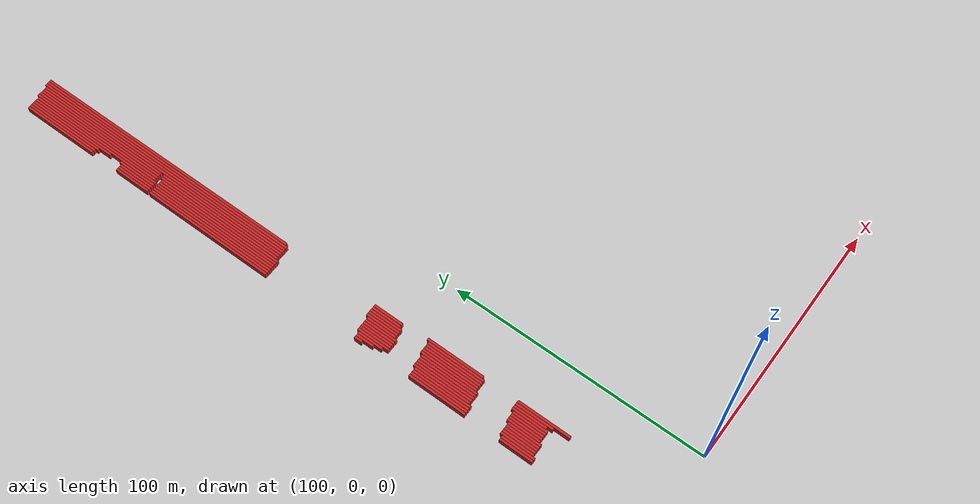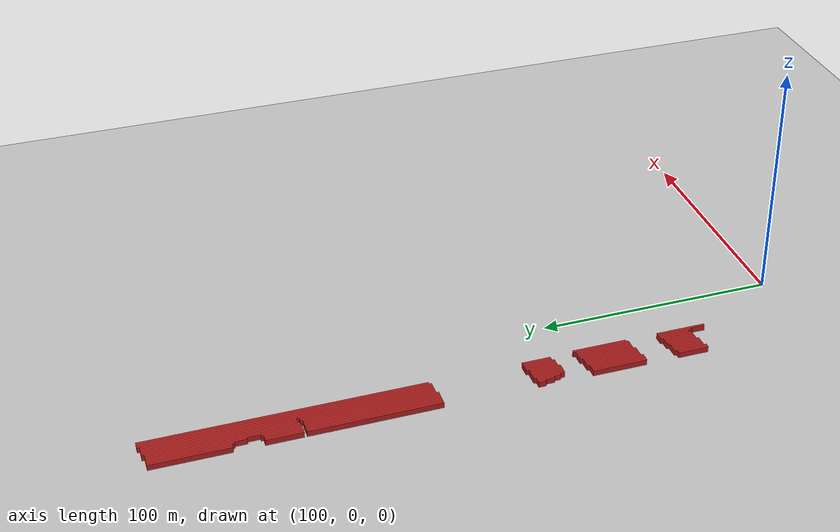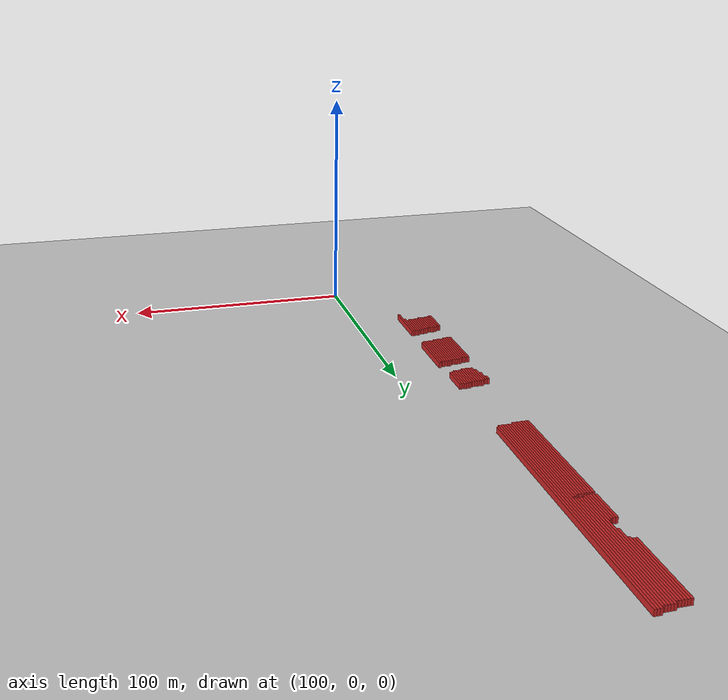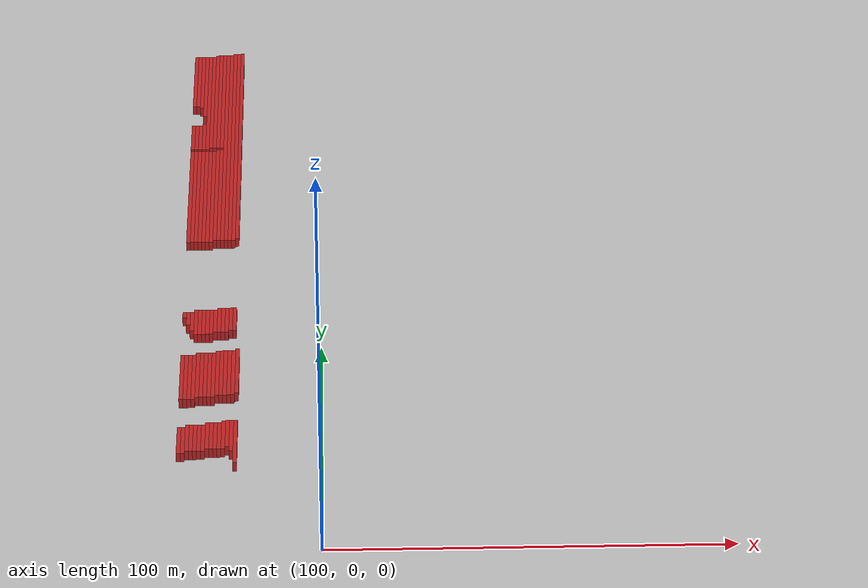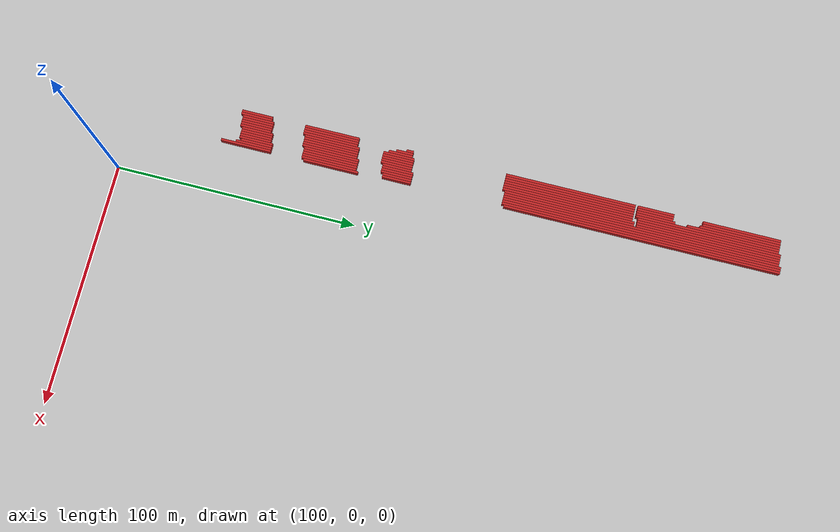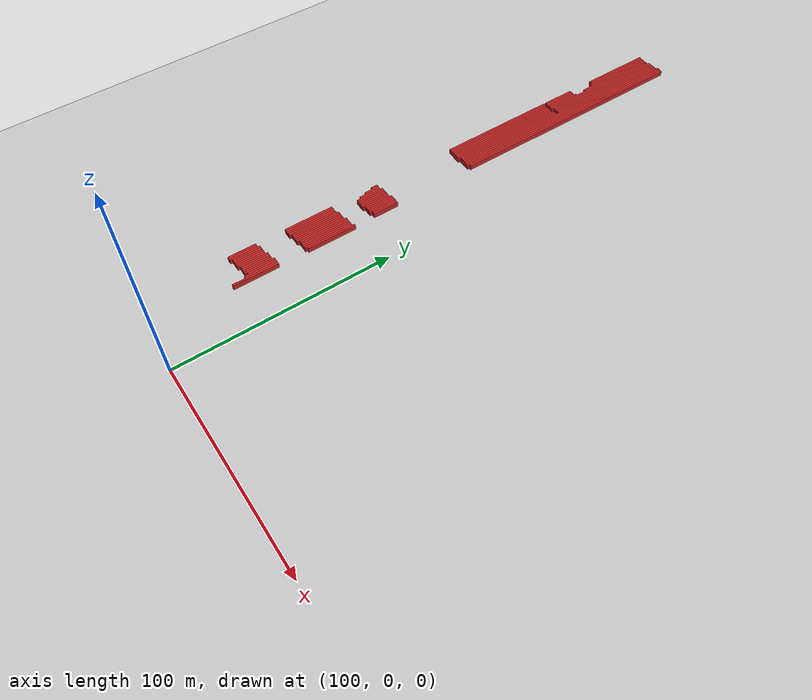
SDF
<sdf version="1.4">
 <world name="1_wall">
  <model name="ground_plane">
   <static>1</static>
   <link name="link">
    <collision name="collision">
     <geometry><plane><normal>0 0 1</normal><size>1000 1000</size></plane></geometry>
     <surface><friction><ode><mu>100</mu><mu2>50</mu2></ode></friction></surface>
    </collision>
    <visual name="visual">
     <cast_shadows>0</cast_shadows>
     <geometry><plane><normal>0 0 1</normal><size>10000 10000</size></plane></geometry>
     <material>
      <script><uri>file://media/materials/scripts/gazebo.material</uri><name>Gazebo/Grey</name></script>
     </material>
    </visual>
    <velocity_decay><linear>0</linear><angular>0</angular></velocity_decay>
   </link>
  </model>
  <model name="Wall_143">
   <static>1</static>
   <link name="Wall_143">
    <collision name="Wall_Collision_143">
     <geometry><box><size>13.0 1.0 2.5</size></box></geometry>
     <pose>0 0 1.25 0 -0 0</pose>
    </collision>
    <visual name="Wall_Visual_143">
     <pose>0 0 1.25 0 -0 0</pose>
     <geometry><box><size>13.0 1.0 2.5</size></box></geometry>
     <material>
      <script><uri>file://media/materials/scripts/gazebo.material</uri><name>Gazebo/Red</name></script>
     </material>
    </visual>
    <velocity_decay><linear>0</linear><angular>0</angular></velocity_decay>
    <pose>64.5 49.5 0 0 0 1.5707963267948966</pose>
   </link>
  </model>
  <model name="Wall_144">
   <static>1</static>
   <link name="Wall_144">
    <collision name="Wall_Collision_144">
     <geometry><box><size>23.0 1.0 2.5</size></box></geometry>
     <pose>0 0 1.25 0 -0 0</pose>
    </collision>
    <visual name="Wall_Visual_144">
     <pose>0 0 1.25 0 -0 0</pose>
     <geometry><box><size>23.0 1.0 2.5</size></box></geometry>
     <material>
      <script><uri>file://media/materials/scripts/gazebo.material</uri><name>Gazebo/Red</name></script>
     </material>
    </visual>
    <velocity_decay><linear>0</linear><angular>0</angular></velocity_decay>
    <pose>64.5 81.5 0 0 0 1.5707963267948966</pose>
   </link>
  </model>
  <model name="Wall_145">
   <static>1</static>
   <link name="Wall_145">
    <collision name="Wall_Collision_145">
     <geometry><box><size>3.0 1.0 2.5</size></box></geometry>
     <pose>0 0 1.25 0 -0 0</pose>
    </collision>
    <visual name="Wall_Visual_145">
     <pose>0 0 1.25 0 -0 0</pose>
     <geometry><box><size>3.0 1.0 2.5</size></box></geometry>
     <material>
      <script><uri>file://media/materials/scripts/gazebo.material</uri><name>Gazebo/Red</name></script>
     </material>
    </visual>
    <velocity_decay><linear>0</linear><angular>0</angular></velocity_decay>
    <pose>64.5 114.5 0 0 0 1.5707963267948966</pose>
   </link>
  </model>
  <model name="Wall_146">
   <static>1</static>
   <link name="Wall_146">
    <collision name="Wall_Collision_146">
     <geometry><box><size>54.0 1.0 2.5</size></box></geometry>
     <pose>0 0 1.25 0 -0 0</pose>
    </collision>
    <visual name="Wall_Visual_146">
     <pose>0 0 1.25 0 -0 0</pose>
     <geometry><box><size>54.0 1.0 2.5</size></box></geometry>
     <material>
      <script><uri>file://media/materials/scripts/gazebo.material</uri><name>Gazebo/Red</name></script>
     </material>
    </visual>
    <velocity_decay><linear>0</linear><angular>0</angular></velocity_decay>
    <pose>64.5 182.0 0 0 0 1.5707963267948966</pose>
   </link>
  </model>
  <model name="Wall_147">
   <static>1</static>
   <link name="Wall_147">
    <collision name="Wall_Collision_147">
     <geometry><box><size>15.0 1.0 2.5</size></box></geometry>
     <pose>0 0 1.25 0 -0 0</pose>
    </collision>
    <visual name="Wall_Visual_147">
     <pose>0 0 1.25 0 -0 0</pose>
     <geometry><box><size>15.0 1.0 2.5</size></box></geometry>
     <material>
      <script><uri>file://media/materials/scripts/gazebo.material</uri><name>Gazebo/Red</name></script>
     </material>
    </visual>
    <velocity_decay><linear>0</linear><angular>0</angular></velocity_decay>
    <pose>64.5 217.5 0 0 0 1.5707963267948966</pose>
   </link>
  </model>
  <model name="Wall_148">
   <static>1</static>
   <link name="Wall_148">
    <collision name="Wall_Collision_148">
     <geometry><box><size>32.0 1.0 2.5</size></box></geometry>
     <pose>0 0 1.25 0 -0 0</pose>
    </collision>
    <visual name="Wall_Visual_148">
     <pose>0 0 1.25 0 -0 0</pose>
     <geometry><box><size>32.0 1.0 2.5</size></box></geometry>
     <material>
      <script><uri>file://media/materials/scripts/gazebo.material</uri><name>Gazebo/Red</name></script>
     </material>
    </visual>
    <velocity_decay><linear>0</linear><angular>0</angular></velocity_decay>
    <pose>64.5 253.0 0 0 0 1.5707963267948966</pose>
   </link>
  </model>
  <model name="Wall_149">
   <static>1</static>
   <link name="Wall_149">
    <collision name="Wall_Collision_149">
     <geometry><box><size>13.0 1.0 2.5</size></box></geometry>
     <pose>0 0 1.25 0 -0 0</pose>
    </collision>
    <visual name="Wall_Visual_149">
     <pose>0 0 1.25 0 -0 0</pose>
     <geometry><box><size>13.0 1.0 2.5</size></box></geometry>
     <material>
      <script><uri>file://media/materials/scripts/gazebo.material</uri><name>Gazebo/Red</name></script>
     </material>
    </visual>
    <velocity_decay><linear>0</linear><angular>0</angular></velocity_decay>
    <pose>65.5 49.5 0 0 0 1.5707963267948966</pose>
   </link>
  </model>
  <model name="Wall_150">
   <static>1</static>
   <link name="Wall_150">
    <collision name="Wall_Collision_150">
     <geometry><box><size>23.0 1.0 2.5</size></box></geometry>
     <pose>0 0 1.25 0 -0 0</pose>
    </collision>
    <visual name="Wall_Visual_150">
     <pose>0 0 1.25 0 -0 0</pose>
     <geometry><box><size>23.0 1.0 2.5</size></box></geometry>
     <material>
      <script><uri>file://media/materials/scripts/gazebo.material</uri><name>Gazebo/Red</name></script>
     </material>
    </visual>
    <velocity_decay><linear>0</linear><angular>0</angular></velocity_decay>
    <pose>65.5 81.5 0 0 0 1.5707963267948966</pose>
   </link>
  </model>
  <model name="Wall_151">
   <static>1</static>
   <link name="Wall_151">
    <collision name="Wall_Collision_151">
     <geometry><box><size>7.0 1.0 2.5</size></box></geometry>
     <pose>0 0 1.25 0 -0 0</pose>
    </collision>
    <visual name="Wall_Visual_151">
     <pose>0 0 1.25 0 -0 0</pose>
     <geometry><box><size>7.0 1.0 2.5</size></box></geometry>
     <material>
      <script><uri>file://media/materials/scripts/gazebo.material</uri><name>Gazebo/Red</name></script>
     </material>
    </visual>
    <velocity_decay><linear>0</linear><angular>0</angular></velocity_decay>
    <pose>65.5 112.5 0 0 0 1.5707963267948966</pose>
   </link>
  </model>
  <model name="Wall_152">
   <static>1</static>
   <link name="Wall_152">
    <collision name="Wall_Collision_152">
     <geometry><box><size>54.0 1.0 2.5</size></box></geometry>
     <pose>0 0 1.25 0 -0 0</pose>
    </collision>
    <visual name="Wall_Visual_152">
     <pose>0 0 1.25 0 -0 0</pose>
     <geometry><box><size>54.0 1.0 2.5</size></box></geometry>
     <material>
      <script><uri>file://media/materials/scripts/gazebo.material</uri><name>Gazebo/Red</name></script>
     </material>
    </visual>
    <velocity_decay><linear>0</linear><angular>0</angular></velocity_decay>
    <pose>65.5 182.0 0 0 0 1.5707963267948966</pose>
   </link>
  </model>
  <model name="Wall_153">
   <static>1</static>
   <link name="Wall_153">
    <collision name="Wall_Collision_153">
     <geometry><box><size>15.0 1.0 2.5</size></box></geometry>
     <pose>0 0 1.25 0 -0 0</pose>
    </collision>
    <visual name="Wall_Visual_153">
     <pose>0 0 1.25 0 -0 0</pose>
     <geometry><box><size>15.0 1.0 2.5</size></box></geometry>
     <material>
      <script><uri>file://media/materials/scripts/gazebo.material</uri><name>Gazebo/Red</name></script>
     </material>
    </visual>
    <velocity_decay><linear>0</linear><angular>0</angular></velocity_decay>
    <pose>65.5 217.5 0 0 0 1.5707963267948966</pose>
   </link>
  </model>
  <model name="Wall_154">
   <static>1</static>
   <link name="Wall_154">
    <collision name="Wall_Collision_154">
     <geometry><box><size>32.0 1.0 2.5</size></box></geometry>
     <pose>0 0 1.25 0 -0 0</pose>
    </collision>
    <visual name="Wall_Visual_154">
     <pose>0 0 1.25 0 -0 0</pose>
     <geometry><box><size>32.0 1.0 2.5</size></box></geometry>
     <material>
      <script><uri>file://media/materials/scripts/gazebo.material</uri><name>Gazebo/Red</name></script>
     </material>
    </visual>
    <velocity_decay><linear>0</linear><angular>0</angular></velocity_decay>
    <pose>65.5 253.0 0 0 0 1.5707963267948966</pose>
   </link>
  </model>
  <model name="Wall_155">
   <static>1</static>
   <link name="Wall_155">
    <collision name="Wall_Collision_155">
     <geometry><box><size>13.0 1.0 2.5</size></box></geometry>
     <pose>0 0 1.25 0 -0 0</pose>
    </collision>
    <visual name="Wall_Visual_155">
     <pose>0 0 1.25 0 -0 0</pose>
     <geometry><box><size>13.0 1.0 2.5</size></box></geometry>
     <material>
      <script><uri>file://media/materials/scripts/gazebo.material</uri><name>Gazebo/Red</name></script>
     </material>
    </visual>
    <velocity_decay><linear>0</linear><angular>0</angular></velocity_decay>
    <pose>66.5 50.5 0 0 0 1.5707963267948966</pose>
   </link>
  </model>
  <model name="Wall_156">
   <static>1</static>
   <link name="Wall_156">
    <collision name="Wall_Collision_156">
     <geometry><box><size>23.0 1.0 2.5</size></box></geometry>
     <pose>0 0 1.25 0 -0 0</pose>
    </collision>
    <visual name="Wall_Visual_156">
     <pose>0 0 1.25 0 -0 0</pose>
     <geometry><box><size>23.0 1.0 2.5</size></box></geometry>
     <material>
      <script><uri>file://media/materials/scripts/gazebo.material</uri><name>Gazebo/Red</name></script>
     </material>
    </visual>
    <velocity_decay><linear>0</linear><angular>0</angular></velocity_decay>
    <pose>66.5 81.5 0 0 0 1.5707963267948966</pose>
   </link>
  </model>
  <model name="Wall_157">
   <static>1</static>
   <link name="Wall_157">
    <collision name="Wall_Collision_157">
     <geometry><box><size>10.0 1.0 2.5</size></box></geometry>
     <pose>0 0 1.25 0 -0 0</pose>
    </collision>
    <visual name="Wall_Visual_157">
     <pose>0 0 1.25 0 -0 0</pose>
     <geometry><box><size>10.0 1.0 2.5</size></box></geometry>
     <material>
      <script><uri>file://media/materials/scripts/gazebo.material</uri><name>Gazebo/Red</name></script>
     </material>
    </visual>
    <velocity_decay><linear>0</linear><angular>0</angular></velocity_decay>
    <pose>66.5 111.0 0 0 0 1.5707963267948966</pose>
   </link>
  </model>
  <model name="Wall_158">
   <static>1</static>
   <link name="Wall_158">
    <collision name="Wall_Collision_158">
     <geometry><box><size>54.0 1.0 2.5</size></box></geometry>
     <pose>0 0 1.25 0 -0 0</pose>
    </collision>
    <visual name="Wall_Visual_158">
     <pose>0 0 1.25 0 -0 0</pose>
     <geometry><box><size>54.0 1.0 2.5</size></box></geometry>
     <material>
      <script><uri>file://media/materials/scripts/gazebo.material</uri><name>Gazebo/Red</name></script>
     </material>
    </visual>
    <velocity_decay><linear>0</linear><angular>0</angular></velocity_decay>
    <pose>66.5 182.0 0 0 0 1.5707963267948966</pose>
   </link>
  </model>
  <model name="Wall_159">
   <static>1</static>
   <link name="Wall_159">
    <collision name="Wall_Collision_159">
     <geometry><box><size>15.0 1.0 2.5</size></box></geometry>
     <pose>0 0 1.25 0 -0 0</pose>
    </collision>
    <visual name="Wall_Visual_159">
     <pose>0 0 1.25 0 -0 0</pose>
     <geometry><box><size>15.0 1.0 2.5</size></box></geometry>
     <material>
      <script><uri>file://media/materials/scripts/gazebo.material</uri><name>Gazebo/Red</name></script>
     </material>
    </visual>
    <velocity_decay><linear>0</linear><angular>0</angular></velocity_decay>
    <pose>66.5 217.5 0 0 0 1.5707963267948966</pose>
   </link>
  </model>
  <model name="Wall_160">
   <static>1</static>
   <link name="Wall_160">
    <collision name="Wall_Collision_160">
     <geometry><box><size>33.0 1.0 2.5</size></box></geometry>
     <pose>0 0 1.25 0 -0 0</pose>
    </collision>
    <visual name="Wall_Visual_160">
     <pose>0 0 1.25 0 -0 0</pose>
     <geometry><box><size>33.0 1.0 2.5</size></box></geometry>
     <material>
      <script><uri>file://media/materials/scripts/gazebo.material</uri><name>Gazebo/Red</name></script>
     </material>
    </visual>
    <velocity_decay><linear>0</linear><angular>0</angular></velocity_decay>
    <pose>66.5 252.5 0 0 0 1.5707963267948966</pose>
   </link>
  </model>
  <model name="Wall_161">
   <static>1</static>
   <link name="Wall_161">
    <collision name="Wall_Collision_161">
     <geometry><box><size>13.0 1.0 2.5</size></box></geometry>
     <pose>0 0 1.25 0 -0 0</pose>
    </collision>
    <visual name="Wall_Visual_161">
     <pose>0 0 1.25 0 -0 0</pose>
     <geometry><box><size>13.0 1.0 2.5</size></box></geometry>
     <material>
      <script><uri>file://media/materials/scripts/gazebo.material</uri><name>Gazebo/Red</name></script>
     </material>
    </visual>
    <velocity_decay><linear>0</linear><angular>0</angular></velocity_decay>
    <pose>67.5 50.5 0 0 0 1.5707963267948966</pose>
   </link>
  </model>
  <model name="Wall_162">
   <static>1</static>
   <link name="Wall_162">
    <collision name="Wall_Collision_162">
     <geometry><box><size>23.0 1.0 2.5</size></box></geometry>
     <pose>0 0 1.25 0 -0 0</pose>
    </collision>
    <visual name="Wall_Visual_162">
     <pose>0 0 1.25 0 -0 0</pose>
     <geometry><box><size>23.0 1.0 2.5</size></box></geometry>
     <material>
      <script><uri>file://media/materials/scripts/gazebo.material</uri><name>Gazebo/Red</name></script>
     </material>
    </visual>
    <velocity_decay><linear>0</linear><angular>0</angular></velocity_decay>
    <pose>67.5 81.5 0 0 0 1.5707963267948966</pose>
   </link>
  </model>
  <model name="Wall_163">
   <static>1</static>
   <link name="Wall_163">
    <collision name="Wall_Collision_163">
     <geometry><box><size>13.0 1.0 2.5</size></box></geometry>
     <pose>0 0 1.25 0 -0 0</pose>
    </collision>
    <visual name="Wall_Visual_163">
     <pose>0 0 1.25 0 -0 0</pose>
     <geometry><box><size>13.0 1.0 2.5</size></box></geometry>
     <material>
      <script><uri>file://media/materials/scripts/gazebo.material</uri><name>Gazebo/Red</name></script>
     </material>
    </visual>
    <velocity_decay><linear>0</linear><angular>0</angular></velocity_decay>
    <pose>67.5 110.5 0 0 0 1.5707963267948966</pose>
   </link>
  </model>
  <model name="Wall_164">
   <static>1</static>
   <link name="Wall_164">
    <collision name="Wall_Collision_164">
     <geometry><box><size>54.0 1.0 2.5</size></box></geometry>
     <pose>0 0 1.25 0 -0 0</pose>
    </collision>
    <visual name="Wall_Visual_164">
     <pose>0 0 1.25 0 -0 0</pose>
     <geometry><box><size>54.0 1.0 2.5</size></box></geometry>
     <material>
      <script><uri>file://media/materials/scripts/gazebo.material</uri><name>Gazebo/Red</name></script>
     </material>
    </visual>
    <velocity_decay><linear>0</linear><angular>0</angular></velocity_decay>
    <pose>67.5 182.0 0 0 0 1.5707963267948966</pose>
   </link>
  </model>
  <model name="Wall_165">
   <static>1</static>
   <link name="Wall_165">
    <collision name="Wall_Collision_165">
     <geometry><box><size>16.0 1.0 2.5</size></box></geometry>
     <pose>0 0 1.25 0 -0 0</pose>
    </collision>
    <visual name="Wall_Visual_165">
     <pose>0 0 1.25 0 -0 0</pose>
     <geometry><box><size>16.0 1.0 2.5</size></box></geometry>
     <material>
      <script><uri>file://media/materials/scripts/gazebo.material</uri><name>Gazebo/Red</name></script>
     </material>
    </visual>
    <velocity_decay><linear>0</linear><angular>0</angular></velocity_decay>
    <pose>67.5 218.0 0 0 0 1.5707963267948966</pose>
   </link>
  </model>
  <model name="Wall_166">
   <static>1</static>
   <link name="Wall_166">
    <collision name="Wall_Collision_166">
     <geometry><box><size>38.0 1.0 2.5</size></box></geometry>
     <pose>0 0 1.25 0 -0 0</pose>
    </collision>
    <visual name="Wall_Visual_166">
     <pose>0 0 1.25 0 -0 0</pose>
     <geometry><box><size>38.0 1.0 2.5</size></box></geometry>
     <material>
      <script><uri>file://media/materials/scripts/gazebo.material</uri><name>Gazebo/Red</name></script>
     </material>
    </visual>
    <velocity_decay><linear>0</linear><angular>0</angular></velocity_decay>
    <pose>67.5 250.0 0 0 0 1.5707963267948966</pose>
   </link>
  </model>
  <model name="Wall_167">
   <static>1</static>
   <link name="Wall_167">
    <collision name="Wall_Collision_167">
     <geometry><box><size>13.0 1.0 2.5</size></box></geometry>
     <pose>0 0 1.25 0 -0 0</pose>
    </collision>
    <visual name="Wall_Visual_167">
     <pose>0 0 1.25 0 -0 0</pose>
     <geometry><box><size>13.0 1.0 2.5</size></box></geometry>
     <material>
      <script><uri>file://media/materials/scripts/gazebo.material</uri><name>Gazebo/Red</name></script>
     </material>
    </visual>
    <velocity_decay><linear>0</linear><angular>0</angular></velocity_decay>
    <pose>68.5 50.5 0 0 0 1.5707963267948966</pose>
   </link>
  </model>
  <model name="Wall_168">
   <static>1</static>
   <link name="Wall_168">
    <collision name="Wall_Collision_168">
     <geometry><box><size>23.0 1.0 2.5</size></box></geometry>
     <pose>0 0 1.25 0 -0 0</pose>
    </collision>
    <visual name="Wall_Visual_168">
     <pose>0 0 1.25 0 -0 0</pose>
     <geometry><box><size>23.0 1.0 2.5</size></box></geometry>
     <material>
      <script><uri>file://media/materials/scripts/gazebo.material</uri><name>Gazebo/Red</name></script>
     </material>
    </visual>
    <velocity_decay><linear>0</linear><angular>0</angular></velocity_decay>
    <pose>68.5 82.5 0 0 0 1.5707963267948966</pose>
   </link>
  </model>
  <model name="Wall_169">
   <static>1</static>
   <link name="Wall_169">
    <collision name="Wall_Collision_169">
     <geometry><box><size>13.0 1.0 2.5</size></box></geometry>
     <pose>0 0 1.25 0 -0 0</pose>
    </collision>
    <visual name="Wall_Visual_169">
     <pose>0 0 1.25 0 -0 0</pose>
     <geometry><box><size>13.0 1.0 2.5</size></box></geometry>
     <material>
      <script><uri>file://media/materials/scripts/gazebo.material</uri><name>Gazebo/Red</name></script>
     </material>
    </visual>
    <velocity_decay><linear>0</linear><angular>0</angular></velocity_decay>
    <pose>68.5 110.5 0 0 0 1.5707963267948966</pose>
   </link>
  </model>
  <model name="Wall_170">
   <static>1</static>
   <link name="Wall_170">
    <collision name="Wall_Collision_170">
     <geometry><box><size>54.0 1.0 2.5</size></box></geometry>
     <pose>0 0 1.25 0 -0 0</pose>
    </collision>
    <visual name="Wall_Visual_170">
     <pose>0 0 1.25 0 -0 0</pose>
     <geometry><box><size>54.0 1.0 2.5</size></box></geometry>
     <material>
      <script><uri>file://media/materials/scripts/gazebo.material</uri><name>Gazebo/Red</name></script>
     </material>
    </visual>
    <velocity_decay><linear>0</linear><angular>0</angular></velocity_decay>
    <pose>68.5 182.0 0 0 0 1.5707963267948966</pose>
   </link>
  </model>
  <model name="Wall_171">
   <static>1</static>
   <link name="Wall_171">
    <collision name="Wall_Collision_171">
     <geometry><box><size>59.0 1.0 2.5</size></box></geometry>
     <pose>0 0 1.25 0 -0 0</pose>
    </collision>
    <visual name="Wall_Visual_171">
     <pose>0 0 1.25 0 -0 0</pose>
     <geometry><box><size>59.0 1.0 2.5</size></box></geometry>
     <material>
      <script><uri>file://media/materials/scripts/gazebo.material</uri><name>Gazebo/Red</name></script>
     </material>
    </visual>
    <velocity_decay><linear>0</linear><angular>0</angular></velocity_decay>
    <pose>68.5 239.5 0 0 0 1.5707963267948966</pose>
   </link>
  </model>
  <model name="Wall_172">
   <static>1</static>
   <link name="Wall_172">
    <collision name="Wall_Collision_172">
     <geometry><box><size>13.0 1.0 2.5</size></box></geometry>
     <pose>0 0 1.25 0 -0 0</pose>
    </collision>
    <visual name="Wall_Visual_172">
     <pose>0 0 1.25 0 -0 0</pose>
     <geometry><box><size>13.0 1.0 2.5</size></box></geometry>
     <material>
      <script><uri>file://media/materials/scripts/gazebo.material</uri><name>Gazebo/Red</name></script>
     </material>
    </visual>
    <velocity_decay><linear>0</linear><angular>0</angular></velocity_decay>
    <pose>69.5 50.5 0 0 0 1.5707963267948966</pose>
   </link>
  </model>
  <model name="Wall_173">
   <static>1</static>
   <link name="Wall_173">
    <collision name="Wall_Collision_173">
     <geometry><box><size>23.0 1.0 2.5</size></box></geometry>
     <pose>0 0 1.25 0 -0 0</pose>
    </collision>
    <visual name="Wall_Visual_173">
     <pose>0 0 1.25 0 -0 0</pose>
     <geometry><box><size>23.0 1.0 2.5</size></box></geometry>
     <material>
      <script><uri>file://media/materials/scripts/gazebo.material</uri><name>Gazebo/Red</name></script>
     </material>
    </visual>
    <velocity_decay><linear>0</linear><angular>0</angular></velocity_decay>
    <pose>69.5 82.5 0 0 0 1.5707963267948966</pose>
   </link>
  </model>
  <model name="Wall_174">
   <static>1</static>
   <link name="Wall_174">
    <collision name="Wall_Collision_174">
     <geometry><box><size>13.0 1.0 2.5</size></box></geometry>
     <pose>0 0 1.25 0 -0 0</pose>
    </collision>
    <visual name="Wall_Visual_174">
     <pose>0 0 1.25 0 -0 0</pose>
     <geometry><box><size>13.0 1.0 2.5</size></box></geometry>
     <material>
      <script><uri>file://media/materials/scripts/gazebo.material</uri><name>Gazebo/Red</name></script>
     </material>
    </visual>
    <velocity_decay><linear>0</linear><angular>0</angular></velocity_decay>
    <pose>69.5 110.5 0 0 0 1.5707963267948966</pose>
   </link>
  </model>
  <model name="Wall_175">
   <static>1</static>
   <link name="Wall_175">
    <collision name="Wall_Collision_175">
     <geometry><box><size>54.0 1.0 2.5</size></box></geometry>
     <pose>0 0 1.25 0 -0 0</pose>
    </collision>
    <visual name="Wall_Visual_175">
     <pose>0 0 1.25 0 -0 0</pose>
     <geometry><box><size>54.0 1.0 2.5</size></box></geometry>
     <material>
      <script><uri>file://media/materials/scripts/gazebo.material</uri><name>Gazebo/Red</name></script>
     </material>
    </visual>
    <velocity_decay><linear>0</linear><angular>0</angular></velocity_decay>
    <pose>69.5 182.0 0 0 0 1.5707963267948966</pose>
   </link>
  </model>
  <model name="Wall_176">
   <static>1</static>
   <link name="Wall_176">
    <collision name="Wall_Collision_176">
     <geometry><box><size>58.0 1.0 2.5</size></box></geometry>
     <pose>0 0 1.25 0 -0 0</pose>
    </collision>
    <visual name="Wall_Visual_176">
     <pose>0 0 1.25 0 -0 0</pose>
     <geometry><box><size>58.0 1.0 2.5</size></box></geometry>
     <material>
      <script><uri>file://media/materials/scripts/gazebo.material</uri><name>Gazebo/Red</name></script>
     </material>
    </visual>
    <velocity_decay><linear>0</linear><angular>0</angular></velocity_decay>
    <pose>69.5 240.0 0 0 0 1.5707963267948966</pose>
   </link>
  </model>
  <model name="Wall_177">
   <static>1</static>
   <link name="Wall_177">
    <collision name="Wall_Collision_177">
     <geometry><box><size>13.0 1.0 2.5</size></box></geometry>
     <pose>0 0 1.25 0 -0 0</pose>
    </collision>
    <visual name="Wall_Visual_177">
     <pose>0 0 1.25 0 -0 0</pose>
     <geometry><box><size>13.0 1.0 2.5</size></box></geometry>
     <material>
      <script><uri>file://media/materials/scripts/gazebo.material</uri><name>Gazebo/Red</name></script>
     </material>
    </visual>
    <velocity_decay><linear>0</linear><angular>0</angular></velocity_decay>
    <pose>70.5 50.5 0 0 0 1.5707963267948966</pose>
   </link>
  </model>
  <model name="Wall_178">
   <static>1</static>
   <link name="Wall_178">
    <collision name="Wall_Collision_178">
     <geometry><box><size>23.0 1.0 2.5</size></box></geometry>
     <pose>0 0 1.25 0 -0 0</pose>
    </collision>
    <visual name="Wall_Visual_178">
     <pose>0 0 1.25 0 -0 0</pose>
     <geometry><box><size>23.0 1.0 2.5</size></box></geometry>
     <material>
      <script><uri>file://media/materials/scripts/gazebo.material</uri><name>Gazebo/Red</name></script>
     </material>
    </visual>
    <velocity_decay><linear>0</linear><angular>0</angular></velocity_decay>
    <pose>70.5 82.5 0 0 0 1.5707963267948966</pose>
   </link>
  </model>
  <model name="Wall_179">
   <static>1</static>
   <link name="Wall_179">
    <collision name="Wall_Collision_179">
     <geometry><box><size>13.0 1.0 2.5</size></box></geometry>
     <pose>0 0 1.25 0 -0 0</pose>
    </collision>
    <visual name="Wall_Visual_179">
     <pose>0 0 1.25 0 -0 0</pose>
     <geometry><box><size>13.0 1.0 2.5</size></box></geometry>
     <material>
      <script><uri>file://media/materials/scripts/gazebo.material</uri><name>Gazebo/Red</name></script>
     </material>
    </visual>
    <velocity_decay><linear>0</linear><angular>0</angular></velocity_decay>
    <pose>70.5 110.5 0 0 0 1.5707963267948966</pose>
   </link>
  </model>
  <model name="Wall_180">
   <static>1</static>
   <link name="Wall_180">
    <collision name="Wall_Collision_180">
     <geometry><box><size>54.0 1.0 2.5</size></box></geometry>
     <pose>0 0 1.25 0 -0 0</pose>
    </collision>
    <visual name="Wall_Visual_180">
     <pose>0 0 1.25 0 -0 0</pose>
     <geometry><box><size>54.0 1.0 2.5</size></box></geometry>
     <material>
      <script><uri>file://media/materials/scripts/gazebo.material</uri><name>Gazebo/Red</name></script>
     </material>
    </visual>
    <velocity_decay><linear>0</linear><angular>0</angular></velocity_decay>
    <pose>70.5 182.0 0 0 0 1.5707963267948966</pose>
   </link>
  </model>
  <model name="Wall_181">
   <static>1</static>
   <link name="Wall_181">
    <collision name="Wall_Collision_181">
     <geometry><box><size>59.0 1.0 2.5</size></box></geometry>
     <pose>0 0 1.25 0 -0 0</pose>
    </collision>
    <visual name="Wall_Visual_181">
     <pose>0 0 1.25 0 -0 0</pose>
     <geometry><box><size>59.0 1.0 2.5</size></box></geometry>
     <material>
      <script><uri>file://media/materials/scripts/gazebo.material</uri><name>Gazebo/Red</name></script>
     </material>
    </visual>
    <velocity_decay><linear>0</linear><angular>0</angular></velocity_decay>
    <pose>70.5 240.5 0 0 0 1.5707963267948966</pose>
   </link>
  </model>
  <model name="Wall_182">
   <static>1</static>
   <link name="Wall_182">
    <collision name="Wall_Collision_182">
     <geometry><box><size>13.0 1.0 2.5</size></box></geometry>
     <pose>0 0 1.25 0 -0 0</pose>
    </collision>
    <visual name="Wall_Visual_182">
     <pose>0 0 1.25 0 -0 0</pose>
     <geometry><box><size>13.0 1.0 2.5</size></box></geometry>
     <material>
      <script><uri>file://media/materials/scripts/gazebo.material</uri><name>Gazebo/Red</name></script>
     </material>
    </visual>
    <velocity_decay><linear>0</linear><angular>0</angular></velocity_decay>
    <pose>71.5 51.5 0 0 0 1.5707963267948966</pose>
   </link>
  </model>
  <model name="Wall_183">
   <static>1</static>
   <link name="Wall_183">
    <collision name="Wall_Collision_183">
     <geometry><box><size>23.0 1.0 2.5</size></box></geometry>
     <pose>0 0 1.25 0 -0 0</pose>
    </collision>
    <visual name="Wall_Visual_183">
     <pose>0 0 1.25 0 -0 0</pose>
     <geometry><box><size>23.0 1.0 2.5</size></box></geometry>
     <material>
      <script><uri>file://media/materials/scripts/gazebo.material</uri><name>Gazebo/Red</name></script>
     </material>
    </visual>
    <velocity_decay><linear>0</linear><angular>0</angular></velocity_decay>
    <pose>71.5 82.5 0 0 0 1.5707963267948966</pose>
   </link>
  </model>
  <model name="Wall_184">
   <static>1</static>
   <link name="Wall_184">
    <collision name="Wall_Collision_184">
     <geometry><box><size>13.0 1.0 2.5</size></box></geometry>
     <pose>0 0 1.25 0 -0 0</pose>
    </collision>
    <visual name="Wall_Visual_184">
     <pose>0 0 1.25 0 -0 0</pose>
     <geometry><box><size>13.0 1.0 2.5</size></box></geometry>
     <material>
      <script><uri>file://media/materials/scripts/gazebo.material</uri><name>Gazebo/Red</name></script>
     </material>
    </visual>
    <velocity_decay><linear>0</linear><angular>0</angular></velocity_decay>
    <pose>71.5 110.5 0 0 0 1.5707963267948966</pose>
   </link>
  </model>
  <model name="Wall_185">
   <static>1</static>
   <link name="Wall_185">
    <collision name="Wall_Collision_185">
     <geometry><box><size>54.0 1.0 2.5</size></box></geometry>
     <pose>0 0 1.25 0 -0 0</pose>
    </collision>
    <visual name="Wall_Visual_185">
     <pose>0 0 1.25 0 -0 0</pose>
     <geometry><box><size>54.0 1.0 2.5</size></box></geometry>
     <material>
      <script><uri>file://media/materials/scripts/gazebo.material</uri><name>Gazebo/Red</name></script>
     </material>
    </visual>
    <velocity_decay><linear>0</linear><angular>0</angular></velocity_decay>
    <pose>71.5 183.0 0 0 0 1.5707963267948966</pose>
   </link>
  </model>
  <model name="Wall_186">
   <static>1</static>
   <link name="Wall_186">
    <collision name="Wall_Collision_186">
     <geometry><box><size>59.0 1.0 2.5</size></box></geometry>
     <pose>0 0 1.25 0 -0 0</pose>
    </collision>
    <visual name="Wall_Visual_186">
     <pose>0 0 1.25 0 -0 0</pose>
     <geometry><box><size>59.0 1.0 2.5</size></box></geometry>
     <material>
      <script><uri>file://media/materials/scripts/gazebo.material</uri><name>Gazebo/Red</name></script>
     </material>
    </visual>
    <velocity_decay><linear>0</linear><angular>0</angular></velocity_decay>
    <pose>71.5 240.5 0 0 0 1.5707963267948966</pose>
   </link>
  </model>
  <model name="Wall_187">
   <static>1</static>
   <link name="Wall_187">
    <collision name="Wall_Collision_187">
     <geometry><box><size>13.0 1.0 2.5</size></box></geometry>
     <pose>0 0 1.25 0 -0 0</pose>
    </collision>
    <visual name="Wall_Visual_187">
     <pose>0 0 1.25 0 -0 0</pose>
     <geometry><box><size>13.0 1.0 2.5</size></box></geometry>
     <material>
      <script><uri>file://media/materials/scripts/gazebo.material</uri><name>Gazebo/Red</name></script>
     </material>
    </visual>
    <velocity_decay><linear>0</linear><angular>0</angular></velocity_decay>
    <pose>72.5 51.5 0 0 0 1.5707963267948966</pose>
   </link>
  </model>
  <model name="Wall_188">
   <static>1</static>
   <link name="Wall_188">
    <collision name="Wall_Collision_188">
     <geometry><box><size>23.0 1.0 2.5</size></box></geometry>
     <pose>0 0 1.25 0 -0 0</pose>
    </collision>
    <visual name="Wall_Visual_188">
     <pose>0 0 1.25 0 -0 0</pose>
     <geometry><box><size>23.0 1.0 2.5</size></box></geometry>
     <material>
      <script><uri>file://media/materials/scripts/gazebo.material</uri><name>Gazebo/Red</name></script>
     </material>
    </visual>
    <velocity_decay><linear>0</linear><angular>0</angular></velocity_decay>
    <pose>72.5 82.5 0 0 0 1.5707963267948966</pose>
   </link>
  </model>
  <model name="Wall_189">
   <static>1</static>
   <link name="Wall_189">
    <collision name="Wall_Collision_189">
     <geometry><box><size>12.0 1.0 2.5</size></box></geometry>
     <pose>0 0 1.25 0 -0 0</pose>
    </collision>
    <visual name="Wall_Visual_189">
     <pose>0 0 1.25 0 -0 0</pose>
     <geometry><box><size>12.0 1.0 2.5</size></box></geometry>
     <material>
      <script><uri>file://media/materials/scripts/gazebo.material</uri><name>Gazebo/Red</name></script>
     </material>
    </visual>
    <velocity_decay><linear>0</linear><angular>0</angular></velocity_decay>
    <pose>72.5 111.0 0 0 0 1.5707963267948966</pose>
   </link>
  </model>
  <model name="Wall_190">
   <static>1</static>
   <link name="Wall_190">
    <collision name="Wall_Collision_190">
     <geometry><box><size>54.0 1.0 2.5</size></box></geometry>
     <pose>0 0 1.25 0 -0 0</pose>
    </collision>
    <visual name="Wall_Visual_190">
     <pose>0 0 1.25 0 -0 0</pose>
     <geometry><box><size>54.0 1.0 2.5</size></box></geometry>
     <material>
      <script><uri>file://media/materials/scripts/gazebo.material</uri><name>Gazebo/Red</name></script>
     </material>
    </visual>
    <velocity_decay><linear>0</linear><angular>0</angular></velocity_decay>
    <pose>72.5 183.0 0 0 0 1.5707963267948966</pose>
   </link>
  </model>
  <model name="Wall_191">
   <static>1</static>
   <link name="Wall_191">
    <collision name="Wall_Collision_191">
     <geometry><box><size>59.0 1.0 2.5</size></box></geometry>
     <pose>0 0 1.25 0 -0 0</pose>
    </collision>
    <visual name="Wall_Visual_191">
     <pose>0 0 1.25 0 -0 0</pose>
     <geometry><box><size>59.0 1.0 2.5</size></box></geometry>
     <material>
      <script><uri>file://media/materials/scripts/gazebo.material</uri><name>Gazebo/Red</name></script>
     </material>
    </visual>
    <velocity_decay><linear>0</linear><angular>0</angular></velocity_decay>
    <pose>72.5 240.5 0 0 0 1.5707963267948966</pose>
   </link>
  </model>
  <model name="Wall_192">
   <static>1</static>
   <link name="Wall_192">
    <collision name="Wall_Collision_192">
     <geometry><box><size>13.0 1.0 2.5</size></box></geometry>
     <pose>0 0 1.25 0 -0 0</pose>
    </collision>
    <visual name="Wall_Visual_192">
     <pose>0 0 1.25 0 -0 0</pose>
     <geometry><box><size>13.0 1.0 2.5</size></box></geometry>
     <material>
      <script><uri>file://media/materials/scripts/gazebo.material</uri><name>Gazebo/Red</name></script>
     </material>
    </visual>
    <velocity_decay><linear>0</linear><angular>0</angular></velocity_decay>
    <pose>73.5 51.5 0 0 0 1.5707963267948966</pose>
   </link>
  </model>
  <model name="Wall_193">
   <static>1</static>
   <link name="Wall_193">
    <collision name="Wall_Collision_193">
     <geometry><box><size>23.0 1.0 2.5</size></box></geometry>
     <pose>0 0 1.25 0 -0 0</pose>
    </collision>
    <visual name="Wall_Visual_193">
     <pose>0 0 1.25 0 -0 0</pose>
     <geometry><box><size>23.0 1.0 2.5</size></box></geometry>
     <material>
      <script><uri>file://media/materials/scripts/gazebo.material</uri><name>Gazebo/Red</name></script>
     </material>
    </visual>
    <velocity_decay><linear>0</linear><angular>0</angular></velocity_decay>
    <pose>73.5 83.5 0 0 0 1.5707963267948966</pose>
   </link>
  </model>
  <model name="Wall_194">
   <static>1</static>
   <link name="Wall_194">
    <collision name="Wall_Collision_194">
     <geometry><box><size>13.0 1.0 2.5</size></box></geometry>
     <pose>0 0 1.25 0 -0 0</pose>
    </collision>
    <visual name="Wall_Visual_194">
     <pose>0 0 1.25 0 -0 0</pose>
     <geometry><box><size>13.0 1.0 2.5</size></box></geometry>
     <material>
      <script><uri>file://media/materials/scripts/gazebo.material</uri><name>Gazebo/Red</name></script>
     </material>
    </visual>
    <velocity_decay><linear>0</linear><angular>0</angular></velocity_decay>
    <pose>73.5 111.5 0 0 0 1.5707963267948966</pose>
   </link>
  </model>
  <model name="Wall_195">
   <static>1</static>
   <link name="Wall_195">
    <collision name="Wall_Collision_195">
     <geometry><box><size>114.0 1.0 2.5</size></box></geometry>
     <pose>0 0 1.25 0 -0 0</pose>
    </collision>
    <visual name="Wall_Visual_195">
     <pose>0 0 1.25 0 -0 0</pose>
     <geometry><box><size>114.0 1.0 2.5</size></box></geometry>
     <material>
      <script><uri>file://media/materials/scripts/gazebo.material</uri><name>Gazebo/Red</name></script>
     </material>
    </visual>
    <velocity_decay><linear>0</linear><angular>0</angular></velocity_decay>
    <pose>73.5 213.0 0 0 0 1.5707963267948966</pose>
   </link>
  </model>
  <model name="Wall_196">
   <static>1</static>
   <link name="Wall_196">
    <collision name="Wall_Collision_196">
     <geometry><box><size>13.0 1.0 2.5</size></box></geometry>
     <pose>0 0 1.25 0 -0 0</pose>
    </collision>
    <visual name="Wall_Visual_196">
     <pose>0 0 1.25 0 -0 0</pose>
     <geometry><box><size>13.0 1.0 2.5</size></box></geometry>
     <material>
      <script><uri>file://media/materials/scripts/gazebo.material</uri><name>Gazebo/Red</name></script>
     </material>
    </visual>
    <velocity_decay><linear>0</linear><angular>0</angular></velocity_decay>
    <pose>74.5 51.5 0 0 0 1.5707963267948966</pose>
   </link>
  </model>
  <model name="Wall_197">
   <static>1</static>
   <link name="Wall_197">
    <collision name="Wall_Collision_197">
     <geometry><box><size>23.0 1.0 2.5</size></box></geometry>
     <pose>0 0 1.25 0 -0 0</pose>
    </collision>
    <visual name="Wall_Visual_197">
     <pose>0 0 1.25 0 -0 0</pose>
     <geometry><box><size>23.0 1.0 2.5</size></box></geometry>
     <material>
      <script><uri>file://media/materials/scripts/gazebo.material</uri><name>Gazebo/Red</name></script>
     </material>
    </visual>
    <velocity_decay><linear>0</linear><angular>0</angular></velocity_decay>
    <pose>74.5 83.5 0 0 0 1.5707963267948966</pose>
   </link>
  </model>
  <model name="Wall_198">
   <static>1</static>
   <link name="Wall_198">
    <collision name="Wall_Collision_198">
     <geometry><box><size>13.0 1.0 2.5</size></box></geometry>
     <pose>0 0 1.25 0 -0 0</pose>
    </collision>
    <visual name="Wall_Visual_198">
     <pose>0 0 1.25 0 -0 0</pose>
     <geometry><box><size>13.0 1.0 2.5</size></box></geometry>
     <material>
      <script><uri>file://media/materials/scripts/gazebo.material</uri><name>Gazebo/Red</name></script>
     </material>
    </visual>
    <velocity_decay><linear>0</linear><angular>0</angular></velocity_decay>
    <pose>74.5 111.5 0 0 0 1.5707963267948966</pose>
   </link>
  </model>
  <model name="Wall_199">
   <static>1</static>
   <link name="Wall_199">
    <collision name="Wall_Collision_199">
     <geometry><box><size>114.0 1.0 2.5</size></box></geometry>
     <pose>0 0 1.25 0 -0 0</pose>
    </collision>
    <visual name="Wall_Visual_199">
     <pose>0 0 1.25 0 -0 0</pose>
     <geometry><box><size>114.0 1.0 2.5</size></box></geometry>
     <material>
      <script><uri>file://media/materials/scripts/gazebo.material</uri><name>Gazebo/Red</name></script>
     </material>
    </visual>
    <velocity_decay><linear>0</linear><angular>0</angular></velocity_decay>
    <pose>74.5 213.0 0 0 0 1.5707963267948966</pose>
   </link>
  </model>
  <model name="Wall_200">
   <static>1</static>
   <link name="Wall_200">
    <collision name="Wall_Collision_200">
     <geometry><box><size>14.0 1.0 2.5</size></box></geometry>
     <pose>0 0 1.25 0 -0 0</pose>
    </collision>
    <visual name="Wall_Visual_200">
     <pose>0 0 1.25 0 -0 0</pose>
     <geometry><box><size>14.0 1.0 2.5</size></box></geometry>
     <material>
      <script><uri>file://media/materials/scripts/gazebo.material</uri><name>Gazebo/Red</name></script>
     </material>
    </visual>
    <velocity_decay><linear>0</linear><angular>0</angular></velocity_decay>
    <pose>75.5 52.0 0 0 0 1.5707963267948966</pose>
   </link>
  </model>
  <model name="Wall_201">
   <static>1</static>
   <link name="Wall_201">
    <collision name="Wall_Collision_201">
     <geometry><box><size>23.0 1.0 2.5</size></box></geometry>
     <pose>0 0 1.25 0 -0 0</pose>
    </collision>
    <visual name="Wall_Visual_201">
     <pose>0 0 1.25 0 -0 0</pose>
     <geometry><box><size>23.0 1.0 2.5</size></box></geometry>
     <material>
      <script><uri>file://media/materials/scripts/gazebo.material</uri><name>Gazebo/Red</name></script>
     </material>
    </visual>
    <velocity_decay><linear>0</linear><angular>0</angular></velocity_decay>
    <pose>75.5 83.5 0 0 0 1.5707963267948966</pose>
   </link>
  </model>
  <model name="Wall_202">
   <static>1</static>
   <link name="Wall_202">
    <collision name="Wall_Collision_202">
     <geometry><box><size>13.0 1.0 2.5</size></box></geometry>
     <pose>0 0 1.25 0 -0 0</pose>
    </collision>
    <visual name="Wall_Visual_202">
     <pose>0 0 1.25 0 -0 0</pose>
     <geometry><box><size>13.0 1.0 2.5</size></box></geometry>
     <material>
      <script><uri>file://media/materials/scripts/gazebo.material</uri><name>Gazebo/Red</name></script>
     </material>
    </visual>
    <velocity_decay><linear>0</linear><angular>0</angular></velocity_decay>
    <pose>75.5 111.5 0 0 0 1.5707963267948966</pose>
   </link>
  </model>
  <model name="Wall_203">
   <static>1</static>
   <link name="Wall_203">
    <collision name="Wall_Collision_203">
     <geometry><box><size>115.0 1.0 2.5</size></box></geometry>
     <pose>0 0 1.25 0 -0 0</pose>
    </collision>
    <visual name="Wall_Visual_203">
     <pose>0 0 1.25 0 -0 0</pose>
     <geometry><box><size>115.0 1.0 2.5</size></box></geometry>
     <material>
      <script><uri>file://media/materials/scripts/gazebo.material</uri><name>Gazebo/Red</name></script>
     </material>
    </visual>
    <velocity_decay><linear>0</linear><angular>0</angular></velocity_decay>
    <pose>75.5 213.5 0 0 0 1.5707963267948966</pose>
   </link>
  </model>
  <model name="Wall_204">
   <static>1</static>
   <link name="Wall_204">
    <collision name="Wall_Collision_204">
     <geometry><box><size>13.0 1.0 2.5</size></box></geometry>
     <pose>0 0 1.25 0 -0 0</pose>
    </collision>
    <visual name="Wall_Visual_204">
     <pose>0 0 1.25 0 -0 0</pose>
     <geometry><box><size>13.0 1.0 2.5</size></box></geometry>
     <material>
      <script><uri>file://media/materials/scripts/gazebo.material</uri><name>Gazebo/Red</name></script>
     </material>
    </visual>
    <velocity_decay><linear>0</linear><angular>0</angular></velocity_decay>
    <pose>76.5 52.5 0 0 0 1.5707963267948966</pose>
   </link>
  </model>
  <model name="Wall_205">
   <static>1</static>
   <link name="Wall_205">
    <collision name="Wall_Collision_205">
     <geometry><box><size>23.0 1.0 2.5</size></box></geometry>
     <pose>0 0 1.25 0 -0 0</pose>
    </collision>
    <visual name="Wall_Visual_205">
     <pose>0 0 1.25 0 -0 0</pose>
     <geometry><box><size>23.0 1.0 2.5</size></box></geometry>
     <material>
      <script><uri>file://media/materials/scripts/gazebo.material</uri><name>Gazebo/Red</name></script>
     </material>
    </visual>
    <velocity_decay><linear>0</linear><angular>0</angular></velocity_decay>
    <pose>76.5 83.5 0 0 0 1.5707963267948966</pose>
   </link>
  </model>
  <model name="Wall_206">
   <static>1</static>
   <link name="Wall_206">
    <collision name="Wall_Collision_206">
     <geometry><box><size>12.0 1.0 2.5</size></box></geometry>
     <pose>0 0 1.25 0 -0 0</pose>
    </collision>
    <visual name="Wall_Visual_206">
     <pose>0 0 1.25 0 -0 0</pose>
     <geometry><box><size>12.0 1.0 2.5</size></box></geometry>
     <material>
      <script><uri>file://media/materials/scripts/gazebo.material</uri><name>Gazebo/Red</name></script>
     </material>
    </visual>
    <velocity_decay><linear>0</linear><angular>0</angular></velocity_decay>
    <pose>76.5 112.0 0 0 0 1.5707963267948966</pose>
   </link>
  </model>
  <model name="Wall_207">
   <static>1</static>
   <link name="Wall_207">
    <collision name="Wall_Collision_207">
     <geometry><box><size>115.0 1.0 2.5</size></box></geometry>
     <pose>0 0 1.25 0 -0 0</pose>
    </collision>
    <visual name="Wall_Visual_207">
     <pose>0 0 1.25 0 -0 0</pose>
     <geometry><box><size>115.0 1.0 2.5</size></box></geometry>
     <material>
      <script><uri>file://media/materials/scripts/gazebo.material</uri><name>Gazebo/Red</name></script>
     </material>
    </visual>
    <velocity_decay><linear>0</linear><angular>0</angular></velocity_decay>
    <pose>76.5 213.5 0 0 0 1.5707963267948966</pose>
   </link>
  </model>
  <model name="Wall_208">
   <static>1</static>
   <link name="Wall_208">
    <collision name="Wall_Collision_208">
     <geometry><box><size>15.0 1.0 2.5</size></box></geometry>
     <pose>0 0 1.25 0 -0 0</pose>
    </collision>
    <visual name="Wall_Visual_208">
     <pose>0 0 1.25 0 -0 0</pose>
     <geometry><box><size>15.0 1.0 2.5</size></box></geometry>
     <material>
      <script><uri>file://media/materials/scripts/gazebo.material</uri><name>Gazebo/Red</name></script>
     </material>
    </visual>
    <velocity_decay><linear>0</linear><angular>0</angular></velocity_decay>
    <pose>77.5 51.5 0 0 0 1.5707963267948966</pose>
   </link>
  </model>
  <model name="Wall_209">
   <static>1</static>
   <link name="Wall_209">
    <collision name="Wall_Collision_209">
     <geometry><box><size>23.0 1.0 2.5</size></box></geometry>
     <pose>0 0 1.25 0 -0 0</pose>
    </collision>
    <visual name="Wall_Visual_209">
     <pose>0 0 1.25 0 -0 0</pose>
     <geometry><box><size>23.0 1.0 2.5</size></box></geometry>
     <material>
      <script><uri>file://media/materials/scripts/gazebo.material</uri><name>Gazebo/Red</name></script>
     </material>
    </visual>
    <velocity_decay><linear>0</linear><angular>0</angular></velocity_decay>
    <pose>77.5 83.5 0 0 0 1.5707963267948966</pose>
   </link>
  </model>
  <model name="Wall_210">
   <static>1</static>
   <link name="Wall_210">
    <collision name="Wall_Collision_210">
     <geometry><box><size>12.0 1.0 2.5</size></box></geometry>
     <pose>0 0 1.25 0 -0 0</pose>
    </collision>
    <visual name="Wall_Visual_210">
     <pose>0 0 1.25 0 -0 0</pose>
     <geometry><box><size>12.0 1.0 2.5</size></box></geometry>
     <material>
      <script><uri>file://media/materials/scripts/gazebo.material</uri><name>Gazebo/Red</name></script>
     </material>
    </visual>
    <velocity_decay><linear>0</linear><angular>0</angular></velocity_decay>
    <pose>77.5 112.0 0 0 0 1.5707963267948966</pose>
   </link>
  </model>
  <model name="Wall_211">
   <static>1</static>
   <link name="Wall_211">
    <collision name="Wall_Collision_211">
     <geometry><box><size>114.0 1.0 2.5</size></box></geometry>
     <pose>0 0 1.25 0 -0 0</pose>
    </collision>
    <visual name="Wall_Visual_211">
     <pose>0 0 1.25 0 -0 0</pose>
     <geometry><box><size>114.0 1.0 2.5</size></box></geometry>
     <material>
      <script><uri>file://media/materials/scripts/gazebo.material</uri><name>Gazebo/Red</name></script>
     </material>
    </visual>
    <velocity_decay><linear>0</linear><angular>0</angular></velocity_decay>
    <pose>77.5 214.0 0 0 0 1.5707963267948966</pose>
   </link>
  </model>
  <model name="Wall_212">
   <static>1</static>
   <link name="Wall_212">
    <collision name="Wall_Collision_212">
     <geometry><box><size>21.0 1.0 2.5</size></box></geometry>
     <pose>0 0 1.25 0 -0 0</pose>
    </collision>
    <visual name="Wall_Visual_212">
     <pose>0 0 1.25 0 -0 0</pose>
     <geometry><box><size>21.0 1.0 2.5</size></box></geometry>
     <material>
      <script><uri>file://media/materials/scripts/gazebo.material</uri><name>Gazebo/Red</name></script>
     </material>
    </visual>
    <velocity_decay><linear>0</linear><angular>0</angular></velocity_decay>
    <pose>78.5 48.5 0 0 0 1.5707963267948966</pose>
   </link>
  </model>
  <model name="Wall_213">
   <static>1</static>
   <link name="Wall_213">
    <collision name="Wall_Collision_213">
     <geometry><box><size>23.0 1.0 2.5</size></box></geometry>
     <pose>0 0 1.25 0 -0 0</pose>
    </collision>
    <visual name="Wall_Visual_213">
     <pose>0 0 1.25 0 -0 0</pose>
     <geometry><box><size>23.0 1.0 2.5</size></box></geometry>
     <material>
      <script><uri>file://media/materials/scripts/gazebo.material</uri><name>Gazebo/Red</name></script>
     </material>
    </visual>
    <velocity_decay><linear>0</linear><angular>0</angular></velocity_decay>
    <pose>78.5 84.5 0 0 0 1.5707963267948966</pose>
   </link>
  </model>
 </world>
</sdf>
